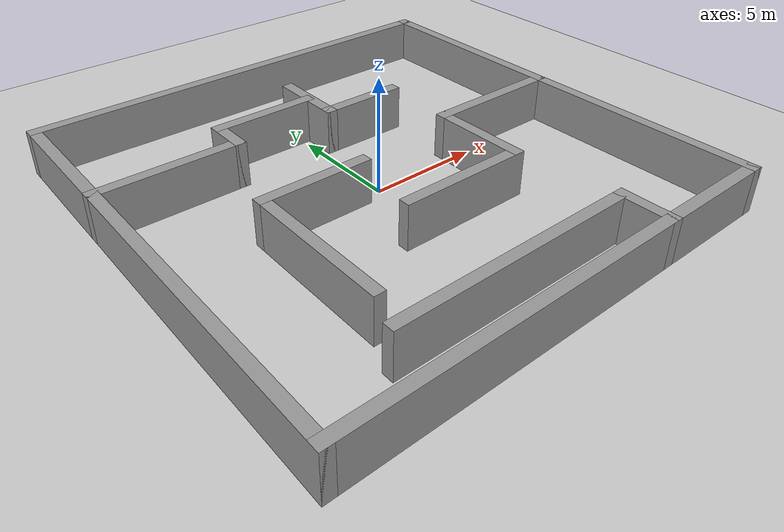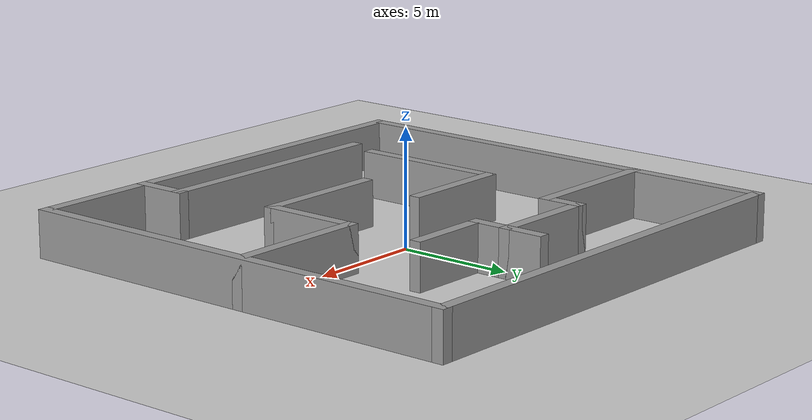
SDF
<sdf version="1.6">
 <world name="default">
  <light name="sun" type="directional">
   <pose>0 0 10 0 -0 0</pose>
   <diffuse>0.8 0.8 0.8 1</diffuse>
   <specular>0.1 0.1 0.1 1</specular>
   <attenuation>
    <range>1000</range>
    <constant>0.9</constant>
    <linear>0.01</linear>
    <quadratic>0.001</quadratic>
   </attenuation>
   <direction>-0.5 0.5 -1</direction>
  </light>
  <model name="ground_plane">
   <static>1</static>
   <link name="link">
    <collision name="collision">
     <geometry><plane><normal>0 0 1</normal><size>100 100</size></plane></geometry>
     <surface><friction><ode><mu>100</mu><mu2>50</mu2></ode></friction></surface>
    </collision>
    <visual name="visual">
     <cast_shadows>0</cast_shadows>
     <geometry><plane><normal>0 0 1</normal><size>100 100</size></plane></geometry>
     <material>
      <script><uri>file://media/materials/scripts/gazebo.material</uri><name>Gazebo/Grey</name></script>
     </material>
    </visual>
   </link>
  </model>
  <gravity>0 0 -9.8</gravity>
  <magnetic_field>6e-06 2.3e-05 -4.2e-05</magnetic_field>
  <atmosphere type="adiabatic"/>
  <physics name="default_physics" default="0" type="ode">
   <max_step_size>0.001</max_step_size>
   <real_time_factor>1</real_time_factor>
   <real_time_update_rate>1000</real_time_update_rate>
  </physics>
  <scene><ambient>0.4 0.4 0.4 1</ambient><background>0.7 0.7 0.7 1</background><shadows>1</shadows></scene>
  <spherical_coordinates>
   <surface_model>EARTH_WGS84</surface_model>
   <latitude_deg>0</latitude_deg>
   <longitude_deg>0</longitude_deg>
   <elevation>0</elevation>
   <heading_deg>0</heading_deg>
  </spherical_coordinates>
  <model name="test_maze1">
   <pose>0 -3.9e-05 0 0 -0 0</pose>
   <link name="Wall_0">
    <collision name="Wall_0_Collision">
     <geometry><box><size>20.5 0.5 2</size></box></geometry>
     <pose>0 0 1 0 -0 0</pose>
    </collision>
    <visual name="Wall_0_Visual">
     <pose>0 0 1 0 -0 0</pose>
     <geometry><box><size>20.5 0.5 2</size></box></geometry>
     <material>
      <script><uri>file://media/materials/scripts/gazebo.material</uri><name>Gazebo/Grey</name></script>
      <ambient>1 1 1 1</ambient>
     </material>
    </visual>
    <pose>-10 3.9e-05 0 0 0 -1.5708</pose>
   </link>
   <link name="Wall_1">
    <collision name="Wall_1_Collision">
     <geometry><box><size>20.5 0.5 2</size></box></geometry>
     <pose>0 0 1 0 -0 0</pose>
    </collision>
    <visual name="Wall_1_Visual">
     <pose>0 0 1 0 -0 0</pose>
     <geometry><box><size>20.5 0.5 2</size></box></geometry>
     <material>
      <script><uri>file://media/materials/scripts/gazebo.material</uri><name>Gazebo/Grey</name></script>
      <ambient>1 1 1 1</ambient>
     </material>
    </visual>
    <pose>0 -9.99996 0 0 -0 0</pose>
   </link>
   <link name="Wall_10">
    <collision name="Wall_10_Collision">
     <geometry><box><size>3.5 0.5 2</size></box></geometry>
     <pose>0 0 1 0 -0 0</pose>
    </collision>
    <visual name="Wall_10_Visual">
     <pose>0 0 1 0 -0 0</pose>
     <geometry><box><size>3.5 0.5 2</size></box></geometry>
     <material>
      <script><uri>file://media/materials/scripts/gazebo.material</uri><name>Gazebo/Grey</name></script>
      <ambient>1 1 1 1</ambient>
     </material>
    </visual>
    <pose>0.5 5.50004 0 0 0 -1.5708</pose>
   </link>
   <link name="Wall_11">
    <collision name="Wall_11_Collision">
     <geometry><box><size>4 0.5 2</size></box></geometry>
     <pose>0 0 1 0 -0 0</pose>
    </collision>
    <visual name="Wall_11_Visual">
     <pose>0 0 1 0 -0 0</pose>
     <geometry><box><size>4 0.5 2</size></box></geometry>
     <material>
      <script><uri>file://media/materials/scripts/gazebo.material</uri><name>Gazebo/Grey</name></script>
      <ambient>1 1 1 1</ambient>
     </material>
    </visual>
    <pose>2.25 4.00004 0 0 -0 0</pose>
   </link>
   <link name="Wall_13">
    <collision name="Wall_13_Collision">
     <geometry><box><size>5 0.5 2</size></box></geometry>
     <pose>0 0 1 0 -0 0</pose>
    </collision>
    <visual name="Wall_13_Visual">
     <pose>0 0 1 0 -0 0</pose>
     <geometry><box><size>5 0.5 2</size></box></geometry>
     <material>
      <script><uri>file://media/materials/scripts/gazebo.material</uri><name>Gazebo/Grey</name></script>
      <ambient>1 1 1 1</ambient>
     </material>
    </visual>
    <pose>-3.25 -0.199961 0 0 -0 3.14159</pose>
   </link>
   <link name="Wall_14">
    <collision name="Wall_14_Collision">
     <geometry><box><size>6.8 0.5 2</size></box></geometry>
     <pose>0 0 1 0 -0 0</pose>
    </collision>
    <visual name="Wall_14_Visual">
     <pose>0 0 1 0 -0 0</pose>
     <geometry><box><size>6.8 0.5 2</size></box></geometry>
     <material>
      <script><uri>file://media/materials/scripts/gazebo.material</uri><name>Gazebo/Grey</name></script>
      <ambient>1 1 1 1</ambient>
     </material>
    </visual>
    <pose>-5.5 -3.34996 0 0 0 -1.5708</pose>
   </link>
   <link name="Wall_16">
    <collision name="Wall_16_Collision">
     <geometry><box><size>11.2 0.5 2</size></box></geometry>
     <pose>0 0 1 0 -0 0</pose>
    </collision>
    <visual name="Wall_16_Visual">
     <pose>0 0 1 0 -0 0</pose>
     <geometry><box><size>11.2 0.5 2</size></box></geometry>
     <material>
      <script><uri>file://media/materials/scripts/gazebo.material</uri><name>Gazebo/Grey</name></script>
      <ambient>1 1 1 1</ambient>
     </material>
    </visual>
    <pose>-0.65 -7.99996 0 0 -0 0</pose>
   </link>
   <link name="Wall_17">
    <collision name="Wall_17_Collision">
     <geometry><box><size>2.50016 0.5 2</size></box></geometry>
     <pose>0 0 1 0 -0 0</pose>
    </collision>
    <visual name="Wall_17_Visual">
     <pose>0 0 1 0 -0 0</pose>
     <geometry><box><size>2.50016 0.5 2</size></box></geometry>
     <material>
      <script><uri>file://media/materials/scripts/gazebo.material</uri><name>Gazebo/Grey</name></script>
      <ambient>1 1 1 1</ambient>
     </material>
    </visual>
    <pose>4.7 -8.99996 0 0 0 -1.5708</pose>
   </link>
   <link name="Wall_19">
    <collision name="Wall_19_Collision">
     <geometry><box><size>6.5 0.5 2</size></box></geometry>
     <pose>0 0 1 0 -0 0</pose>
    </collision>
    <visual name="Wall_19_Visual">
     <pose>0 0 1 0 -0 0</pose>
     <geometry><box><size>6.5 0.5 2</size></box></geometry>
     <material>
      <script><uri>file://media/materials/scripts/gazebo.material</uri><name>Gazebo/Grey</name></script>
      <ambient>1 1 1 1</ambient>
     </material>
    </visual>
    <pose>7 0.500039 0 0 -0 0</pose>
   </link>
   <link name="Wall_2">
    <collision name="Wall_2_Collision">
     <geometry><box><size>20.5 0.5 2</size></box></geometry>
     <pose>0 0 1 0 -0 0</pose>
    </collision>
    <visual name="Wall_2_Visual">
     <pose>0 0 1 0 -0 0</pose>
     <geometry><box><size>20.5 0.5 2</size></box></geometry>
     <material>
      <script><uri>file://media/materials/scripts/gazebo.material</uri><name>Gazebo/Grey</name></script>
      <ambient>1 1 1 1</ambient>
     </material>
    </visual>
    <pose>10 3.9e-05 0 0 -0 1.5708</pose>
   </link>
   <link name="Wall_21">
    <collision name="Wall_21_Collision">
     <geometry><box><size>4.5 0.5 2</size></box></geometry>
     <pose>0 0 1 0 -0 0</pose>
    </collision>
    <visual name="Wall_21_Visual">
     <pose>0 0 1 0 -0 0</pose>
     <geometry><box><size>4.5 0.5 2</size></box></geometry>
     <material>
      <script><uri>file://media/materials/scripts/gazebo.material</uri><name>Gazebo/Grey</name></script>
      <ambient>1 1 1 1</ambient>
     </material>
    </visual>
    <pose>4 -1.49996 0 0 0 -1.5708</pose>
   </link>
   <link name="Wall_22">
    <collision name="Wall_22_Collision">
     <geometry><box><size>6 0.5 2</size></box></geometry>
     <pose>0 0 1 0 -0 0</pose>
    </collision>
    <visual name="Wall_22_Visual">
     <pose>0 0 1 0 -0 0</pose>
     <geometry><box><size>6 0.5 2</size></box></geometry>
     <material>
      <script><uri>file://media/materials/scripts/gazebo.material</uri><name>Gazebo/Grey</name></script>
      <ambient>1 1 1 1</ambient>
     </material>
    </visual>
    <pose>1.25 -3.49996 0 0 -0 3.14159</pose>
   </link>
   <link name="Wall_3">
    <collision name="Wall_3_Collision">
     <geometry><box><size>20.5 0.5 2</size></box></geometry>
     <pose>0 0 1 0 -0 0</pose>
    </collision>
    <visual name="Wall_3_Visual">
     <pose>0 0 1 0 -0 0</pose>
     <geometry><box><size>20.5 0.5 2</size></box></geometry>
     <material>
      <script><uri>file://media/materials/scripts/gazebo.material</uri><name>Gazebo/Grey</name></script>
      <ambient>1 1 1 1</ambient>
     </material>
    </visual>
    <pose>0 10 0 0 -0 3.14159</pose>
   </link>
   <link name="Wall_5">
    <collision name="Wall_5_Collision">
     <geometry><box><size>6.5 0.5 2</size></box></geometry>
     <pose>0 0 1 0 -0 0</pose>
    </collision>
    <visual name="Wall_5_Visual">
     <pose>0 0 1 0 -0 0</pose>
     <geometry><box><size>6.5 0.5 2</size></box></geometry>
     <material>
      <script><uri>file://media/materials/scripts/gazebo.material</uri><name>Gazebo/Grey</name></script>
      <ambient>1 1 1 1</ambient>
     </material>
    </visual>
    <pose>-7 4.00004 0 0 -0 0</pose>
   </link>
   <link name="Wall_6">
    <collision name="Wall_6_Collision">
     <geometry><box><size>2 0.5 2</size></box></geometry>
     <pose>0 0 1 0 -0 0</pose>
    </collision>
    <visual name="Wall_6_Visual">
     <pose>0 0 1 0 -0 0</pose>
     <geometry><box><size>2 0.5 2</size></box></geometry>
     <material>
      <script><uri>file://media/materials/scripts/gazebo.material</uri><name>Gazebo/Grey</name></script>
      <ambient>1 1 1 1</ambient>
     </material>
    </visual>
    <pose>-4 4.75004 0 0 -0 1.5708</pose>
   </link>
   <link name="Wall_7">
    <collision name="Wall_7_Collision">
     <geometry><box><size>5 0.5 2</size></box></geometry>
     <pose>0 0 1 0 -0 0</pose>
    </collision>
    <visual name="Wall_7_Visual">
     <pose>0 0 1 0 -0 0</pose>
     <geometry><box><size>5 0.5 2</size></box></geometry>
     <material>
      <script><uri>file://media/materials/scripts/gazebo.material</uri><name>Gazebo/Grey</name></script>
      <ambient>1 1 1 1</ambient>
     </material>
    </visual>
    <pose>-1.75 5.50004 0 0 -0 0</pose>
   </link>
   <static>1</static>
  </model>
 </world>
</sdf>
